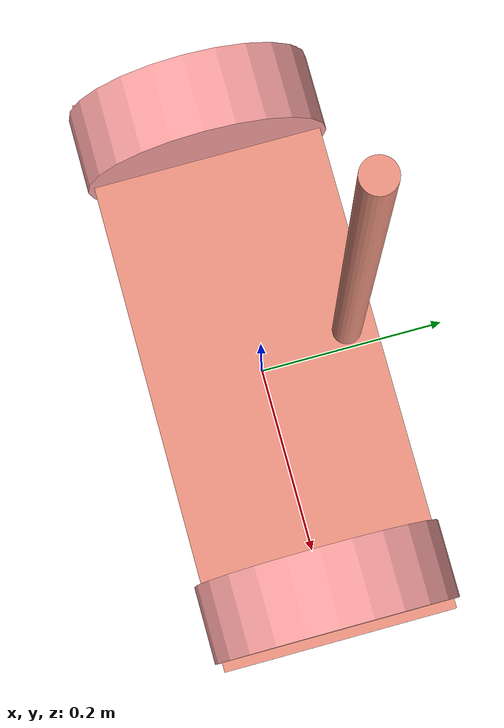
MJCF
<mujoco model="balance">
    <compiler angle="radian"/>
    <size njmax="500" nconmax="100"/>
    <asset>
        <texture type="2d" name="wheel_texture" builtin="checker" mark="edge"
                 rgb1="1 1 1" rgb2="1 0.3 0.3"
                 markrgb="0.3 0.3 0.3" width="1024" height="1024"/>
        <material name="wheel_material" texture="wheel_texture" texuniform="true" texrepeat="20 20"/>
        <texture type="2d" name="body_texture" builtin="gradient" rgb1="0.9 0.3 0.5"
                 rgb2="0.95 0.85 0.5" width="512" height="512"/>
        <material name="body_material" texture="body_texture" texrepeat="4 2" shininess="0.3"/>
    </asset>
    <option gravity="0 0 -9.81" viscosity="0.002"/>
    <worldbody>
        <body name="segway" pos="0 0 0.09">
            <joint name="segway_free" type="free" damping="0.5"/>

            <!-- 轮轴杆：加厚、加重，降低重心 -->
            <body name="wheel_axle" pos="0 0 0.03">
                <inertial pos="0.0 0.0 0.0" quat="0.707107 0 0 0.707107"
                          mass="40.489" diaginertia="0.87993 0.64149 0.31774"/>
                <geom type="box" size="0.3 0.12 0.02" material="body_material"/>
            </body>

            <!-- 倒立杆 -->
            <body name="pendulum" pos="0 0 0.05">
                <inertial pos="0.0 0.0 0.0" quat="0.707107 0 0 0.707107"
                          mass="20.48164" diaginertia="0.75267 0.672276 0.0894829"/>
                <geom type="cylinder" size="0.015 0.35" pos="0 0.09 0.35" material="body_material"/>
            </body>

            <!-- 左轮 -->
            <body name="l_wheel" pos="-0.25 0 0.034">
                <inertial pos="0 0 0" quat="0.5 0.5 -0.5 0.5"
                          mass="4.23004" diaginertia="0.01832 0.010662 0.0105854"/>
                <joint name="torso_l_wheel" type="hinge" pos="0 0 0" axis="-1 0 0" damping="0.05"/>
                <geom type="cylinder" size="0.1275 0.04" quat="0.707107 0 0.707107 0"
                      material="wheel_material" contype="2" conaffinity="1" friction="2 1 0.8"/>
                <geom type="cylinder" size="0.1275 0.04" quat="0.707107 0 0.707107 0"
                      material="wheel_material"/>
            </body>

            <!-- 右轮 -->
            <body name="r_wheel" pos="0.25 0 0.034">
                <inertial pos="0 0 0" quat="0.5 0.5 -0.5 0.5"
                          mass="4.23004" diaginertia="0.01832 0.010662 0.0105854"/>
                <joint name="torso_r_wheel" type="hinge" pos="0 0 0" axis="-1 0 0" damping="0.05"/>
                <geom type="cylinder" size="0.1275 0.04" quat="0.707107 0 0.707107 0"
                      material="wheel_material" contype="2" conaffinity="1" friction="2 1 0.8"/>
                <geom type="cylinder" size="0.1275 0.04" quat="0.707107 0 0.707107 0"
                      material="wheel_material"/>
            </body>
        </body>
    </worldbody>

    <actuator> <!-- 速度控制，限速范围扩大以支持大速度 -->
        <velocity name="motor_l_wheel" joint="torso_l_wheel" gear="1" kv="0.9" ctrllimited="true" ctrlrange="-300 300"/>
        <velocity name="motor_r_wheel" joint="torso_r_wheel" gear="1" kv="0.9" ctrllimited="true" ctrlrange="-300 300"/>
    </actuator>
</mujoco>
